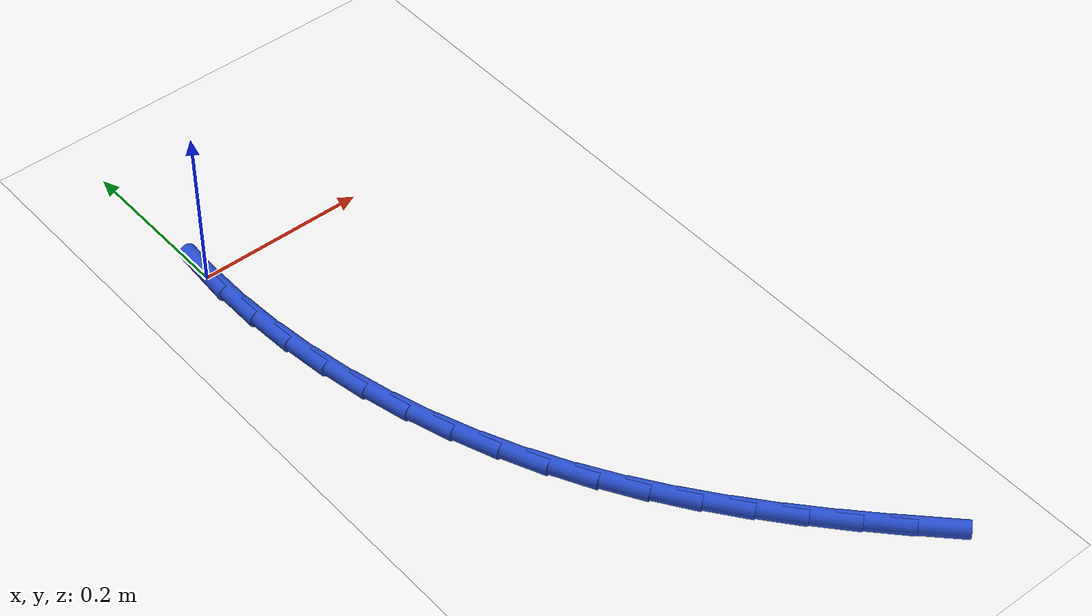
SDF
<sdf version="1.6">
 <world name="default">
  <model name="ground_plane">
   <static>1</static>
   <link name="link">
    <collision name="collision">
     <geometry><plane><normal>0 0 1</normal><size>100 100</size></plane></geometry>
     <surface><friction><ode><mu>100</mu><mu2>50</mu2></ode></friction></surface>
    </collision>
    <visual name="visual">
     <cast_shadows>0</cast_shadows>
     <geometry><plane><normal>0 0 1</normal><size>100 100</size></plane></geometry>
     <material>
      <script><uri>file://media/materials/scripts/gazebo.material</uri><name>Gazebo/WhiteGlow</name></script>
     </material>
    </visual>
   </link>
  </model>
  <model name="line">
   <link name="link_124">
    <pose>0.33939397525641113 -0.745350279839006 0.01 0 1.57 -0.7965719406753093</pose>
    <collision name="collision">
     <geometry><cylinder><radius>0.01</radius><length>0.08</length></cylinder></geometry>
    </collision>
    <visual name="visual">
     <material>
      <script><name>Gazebo/Blue</name><uri>file://media/materials/scripts/gazebo.material</uri></script>
     </material>
     <geometry><cylinder><radius>0.01</radius><length>0.08</length></cylinder></geometry>
    </visual>
   </link>
   <link name="link_125">
    <pose>0.3024525180808234 -0.7075739075304857 0.01 0 1.57 -0.8220496465660678</pose>
    <collision name="collision">
     <geometry><cylinder><radius>0.01</radius><length>0.08</length></cylinder></geometry>
    </collision>
    <visual name="visual">
     <material>
      <script><name>Gazebo/Blue</name><uri>file://media/materials/scripts/gazebo.material</uri></script>
     </material>
     <geometry><cylinder><radius>0.01</radius><length>0.08</length></cylinder></geometry>
    </visual>
   </link>
   <link name="link_126">
    <pose>0.2665296782287111 -0.6689163612633011 0.01 0 1.57 -0.8531867457574088</pose>
    <collision name="collision">
     <geometry><cylinder><radius>0.01</radius><length>0.08</length></cylinder></geometry>
    </collision>
    <visual name="visual">
     <material>
      <script><name>Gazebo/Blue</name><uri>file://media/materials/scripts/gazebo.material</uri></script>
     </material>
     <geometry><cylinder><radius>0.01</radius><length>0.08</length></cylinder></geometry>
    </visual>
   </link>
   <link name="link_127">
    <pose>0.23189514768592281 -0.6292364278232822 0.01 0 1.57 -0.8900870484111029</pose>
    <collision name="collision">
     <geometry><cylinder><radius>0.01</radius><length>0.08</length></cylinder></geometry>
    </collision>
    <visual name="visual">
     <material>
      <script><name>Gazebo/Blue</name><uri>file://media/materials/scripts/gazebo.material</uri></script>
     </material>
     <geometry><cylinder><radius>0.01</radius><length>0.08</length></cylinder></geometry>
    </visual>
   </link>
   <link name="link_128">
    <pose>0.198818618438306 -0.5883928939962574 0.01 0 1.57 -0.9328211927968593</pose>
    <collision name="collision">
     <geometry><cylinder><radius>0.01</radius><length>0.08</length></cylinder></geometry>
    </collision>
    <visual name="visual">
     <material>
      <script><name>Gazebo/Blue</name><uri>file://media/materials/scripts/gazebo.material</uri></script>
     </material>
     <geometry><cylinder><radius>0.01</radius><length>0.08</length></cylinder></geometry>
    </visual>
   </link>
   <link name="link_129">
    <pose>0.16756978247170828 -0.5462445465680558 0.01 0 1.57 -0.9813890533959811</pose>
    <collision name="collision">
     <geometry><cylinder><radius>0.01</radius><length>0.08</length></cylinder></geometry>
    </collision>
    <visual name="visual">
     <material>
      <script><name>Gazebo/Blue</name><uri>file://media/materials/scripts/gazebo.material</uri></script>
     </material>
     <geometry><cylinder><radius>0.01</radius><length>0.08</length></cylinder></geometry>
    </visual>
   </link>
   <link name="link_130">
    <pose>0.13841833177197732 -0.5026501723245064 0.01 0 1.57 -1.0356760953699127</pose>
    <collision name="collision">
     <geometry><cylinder><radius>0.01</radius><length>0.08</length></cylinder></geometry>
    </collision>
    <visual name="visual">
     <material>
      <script><name>Gazebo/Blue</name><uri>file://media/materials/scripts/gazebo.material</uri></script>
     </material>
     <geometry><cylinder><radius>0.01</radius><length>0.08</length></cylinder></geometry>
    </visual>
   </link>
   <link name="link_131">
    <pose>0.11163395832496063 -0.45746855805143744 0.01 0 1.57 -1.0952623722702968</pose>
    <collision name="collision">
     <geometry><cylinder><radius>0.01</radius><length>0.08</length></cylinder></geometry>
    </collision>
    <visual name="visual">
     <material>
      <script><name>Gazebo/Blue</name><uri>file://media/materials/scripts/gazebo.material</uri></script>
     </material>
     <geometry><cylinder><radius>0.01</radius><length>0.08</length></cylinder></geometry>
    </visual>
   </link>
   <link name="link_132">
    <pose>0.08748214433710827 -0.41056704802285826 0.01 0 1.57 -1.1564259293088923</pose>
    <collision name="collision">
     <geometry><cylinder><radius>0.01</radius><length>0.08</length></cylinder></geometry>
    </collision>
    <visual name="visual">
     <material>
      <script><name>Gazebo/Blue</name><uri>file://media/materials/scripts/gazebo.material</uri></script>
     </material>
     <geometry><cylinder><radius>0.01</radius><length>0.08</length></cylinder></geometry>
    </visual>
   </link>
   <link name="link_133">
    <pose>0.06612802106876921 -0.36201697630742774 0.01 0 1.57 -1.216001868939487</pose>
    <collision name="collision">
     <geometry><cylinder><radius>0.01</radius><length>0.08</length></cylinder></geometry>
    </collision>
    <visual name="visual">
     <material>
      <script><name>Gazebo/Blue</name><uri>file://media/materials/scripts/gazebo.material</uri></script>
     </material>
     <geometry><cylinder><radius>0.01</radius><length>0.08</length></cylinder></geometry>
    </visual>
   </link>
   <link name="link_134">
    <pose>0.047634369943885035 -0.31209773004079566 0.01 0 1.57 -1.2743979984394571</pose>
    <collision name="collision">
     <geometry><cylinder><radius>0.01</radius><length>0.08</length></cylinder></geometry>
    </collision>
    <visual name="visual">
     <material>
      <script><name>Gazebo/Blue</name><uri>file://media/materials/scripts/gazebo.material</uri></script>
     </material>
     <geometry><cylinder><radius>0.01</radius><length>0.08</length></cylinder></geometry>
    </visual>
   </link>
   <link name="link_135">
    <pose>0.03205936278018528 -0.2610980666003579 0.01 0 1.57 -1.3321814998718273</pose>
    <collision name="collision">
     <geometry><cylinder><radius>0.01</radius><length>0.08</length></cylinder></geometry>
    </collision>
    <visual name="visual">
     <material>
      <script><name>Gazebo/Blue</name><uri>file://media/materials/scripts/gazebo.material</uri></script>
     </material>
     <geometry><cylinder><radius>0.01</radius><length>0.08</length></cylinder></geometry>
    </visual>
   </link>
   <link name="link_136">
    <pose>0.01946117139540021 -0.20930674336351326 0.01 0 1.57 -1.389921918467495</pose>
    <collision name="collision">
     <geometry><cylinder><radius>0.01</radius><length>0.08</length></cylinder></geometry>
    </collision>
    <visual name="visual">
     <material>
      <script><name>Gazebo/Blue</name><uri>file://media/materials/scripts/gazebo.material</uri></script>
     </material>
     <geometry><cylinder><radius>0.01</radius><length>0.08</length></cylinder></geometry>
    </visual>
   </link>
   <link name="link_137">
    <pose>0.009897967607259379 -0.15701251770765823 0.01 0 1.57 -1.448195025182283</pose>
    <collision name="collision">
     <geometry><cylinder><radius>0.01</radius><length>0.08</length></cylinder></geometry>
    </collision>
    <visual name="visual">
     <material>
      <script><name>Gazebo/Blue</name><uri>file://media/materials/scripts/gazebo.material</uri></script>
     </material>
     <geometry><cylinder><radius>0.01</radius><length>0.08</length></cylinder></geometry>
    </visual>
   </link>
   <link name="link_138">
    <pose>0.003427923233492538 -0.1045041470101898 0.01 0 1.57 -1.507587199465067</pose>
    <collision name="collision">
     <geometry><cylinder><radius>0.01</radius><length>0.08</length></cylinder></geometry>
    </collision>
    <visual name="visual">
     <material>
      <script><name>Gazebo/Blue</name><uri>file://media/materials/scripts/gazebo.material</uri></script>
     </material>
     <geometry><cylinder><radius>0.01</radius><length>0.08</length></cylinder></geometry>
    </visual>
   </link>
   <link name="link_139">
    <pose>0.00010921009182949214 -0.05207038864850509 0.01 0 1.57 -1.5686989748347948</pose>
    <collision name="collision">
     <geometry><cylinder><radius>0.01</radius><length>0.08</length></cylinder></geometry>
    </collision>
    <visual name="visual">
     <material>
      <script><name>Gazebo/Blue</name><uri>file://media/materials/scripts/gazebo.material</uri></script>
     </material>
     <geometry><cylinder><radius>0.01</radius><length>0.08</length></cylinder></geometry>
    </visual>
   </link>
   <link name="link_140">
    <pose>2.0816681711721685e-17 -4.3021142204224816e-16 0.01 0 1.57 1.5094465052537192</pose>
    <collision name="collision">
     <geometry><cylinder><radius>0.01</radius><length>0.08</length></cylinder></geometry>
    </collision>
    <visual name="visual">
     <material>
      <script><name>Gazebo/Blue</name><uri>file://media/materials/scripts/gazebo.material</uri></script>
     </material>
     <geometry><cylinder><radius>0.01</radius><length>0.08</length></cylinder></geometry>
    </visual>
   </link>
  </model>
 </world>
</sdf>
